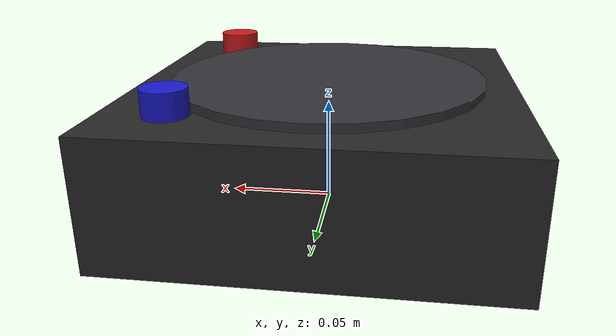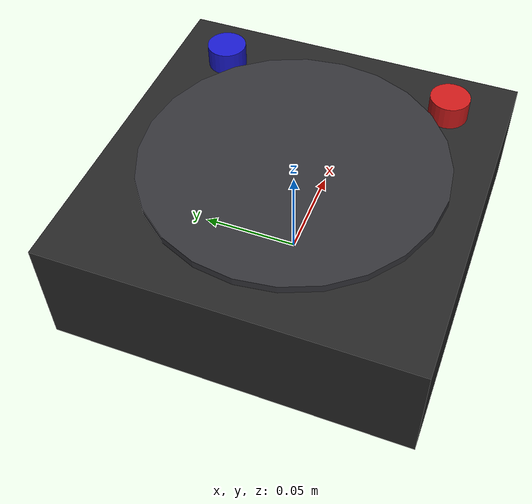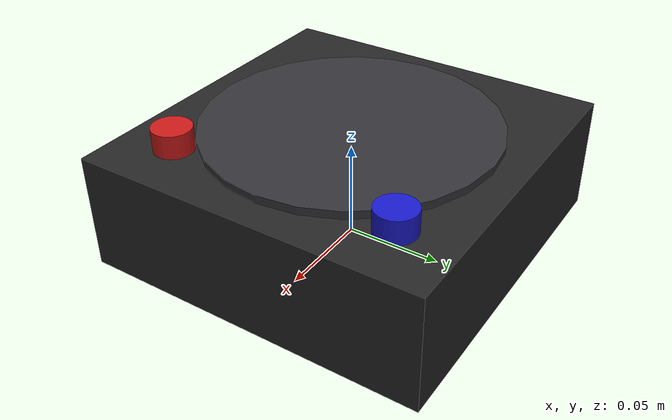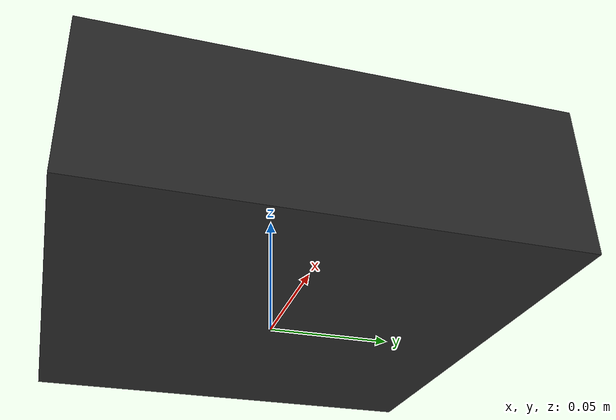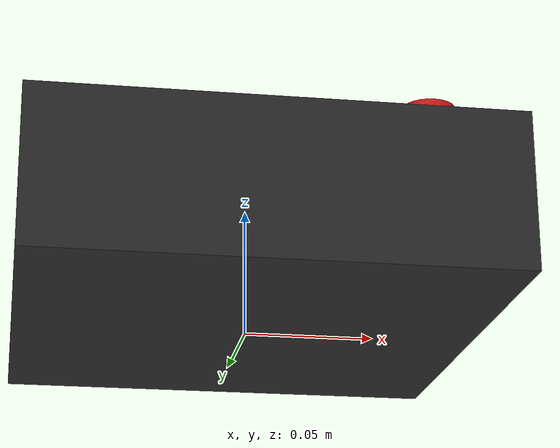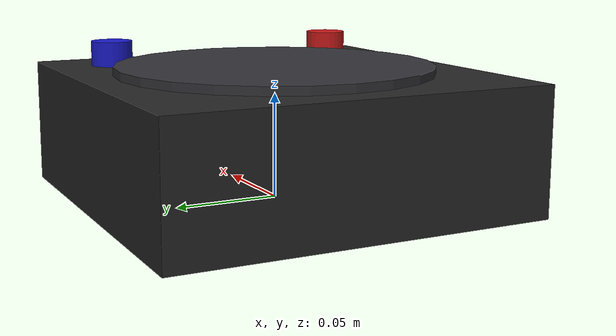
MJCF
<?xml version="1.0" encoding="utf-8"?>
<mujoco model="hot_plate_stirrer">
  <compiler angle="radian" autolimits="true"/>
  <default>
    <default class="body"><geom contype="1" conaffinity="1"/></default>
  </default>
  <worldbody>
    <body name="base">
      <geom type="box" size="0.09 0.09 0.03" pos="0 0 0.03" rgba="0.15 0.15 0.15 1" class="body"/>
      <geom type="cylinder" size="0.075 0.002" pos="0 0 0.062" rgba="0.2 0.2 0.22 1" class="body"/>
      <geom type="cylinder" size="0.01 0.008" pos="0.06 0.06 0.064" rgba="0.1 0.1 0.8 1" class="body"/>
      <body name="temp_knob" pos="0.06 -0.06 0.064">
        <joint name="temp_knob_joint" type="hinge" axis="0 0 1" range="-3.14159 3.14159" damping="0.3" frictionloss="0.1"/>
  <geom type="cylinder" size="0.01 0.008" pos="0 0 0" rgba="0.8 0.1 0.1 1" class="body"/>
      </body>
    </body>
  </worldbody>
</mujoco>
